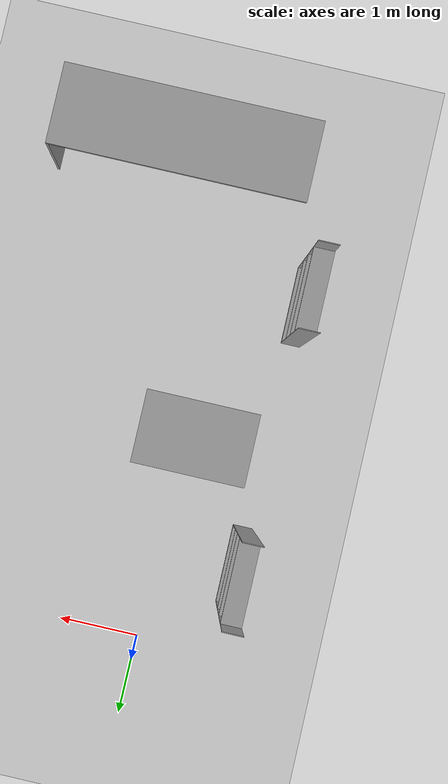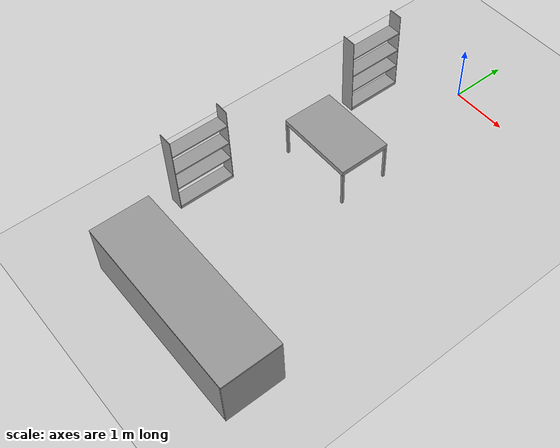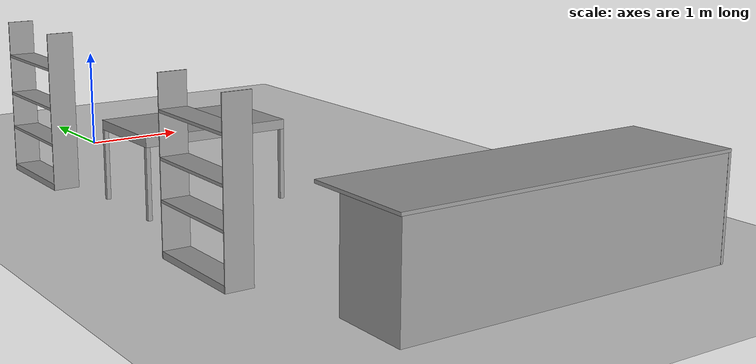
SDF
<sdf version="1.7">
 <world name="default">
  <model name="ground_plane">
   <static>1</static>
   <link name="link">
    <collision name="collision">
     <geometry><plane><normal>0 0 1</normal><size>100 100</size></plane></geometry>
     <surface>
      <contact><collide_bitmask>65535</collide_bitmask></contact>
      <friction><ode><mu>100</mu><mu2>50</mu2></ode></friction>
     </surface>
    </collision>
    <visual name="visual">
     <cast_shadows>0</cast_shadows>
     <geometry><plane><normal>0 0 1</normal><size>100 100</size></plane></geometry>
     <material>
      <script><uri>file://media/materials/scripts/gazebo.material</uri><name>Gazebo/Grey</name></script>
     </material>
    </visual>
   </link>
  </model>
  <model name="kitchen_island">
   <link name="link_0">
    <inertial>
     <mass>1</mass>
     <inertia>
      <ixx>0.166667</ixx>
      <ixy>0</ixy>
      <ixz>0</ixz>
      <iyy>0.166667</iyy>
      <iyz>0</iyz>
      <izz>0.166667</izz>
     </inertia>
    </inertial>
    <pose>0 0 0.917 0 -0 0</pose>
    <visual name="visual">
     <geometry><box><size>3.18 1 0.028</size></box></geometry>
     <material>
      <lighting>1</lighting>
      <script><uri>file://media/materials/scripts/gazebo.material</uri><name>Gazebo/Grey</name></script>
      <shader type="pixel"><normal_map>__default__</normal_map></shader>
      <ambient>0.3 0.3 0.3 1</ambient>
      <diffuse>0.7 0.7 0.7 1</diffuse>
      <specular>0.01 0.01 0.01 1</specular>
      <emissive>0 0 0 1</emissive>
     </material>
    </visual>
    <collision name="collision">
     <geometry><box><size>3.18 1 0.028</size></box></geometry>
     <surface>
      <friction>
       <ode><mu>1</mu><mu2>1</mu2><fdir1>0 0 0</fdir1><slip1>0</slip1><slip2>0</slip2></ode>
       <torsional>
        <coefficient>1</coefficient>
        <patch_radius>0</patch_radius>
        <surface_radius>0</surface_radius>
        <use_patch_radius>1</use_patch_radius>
        <ode><slip>0</slip></ode>
       </torsional>
      </friction>
      <bounce><restitution_coefficient>0</restitution_coefficient><threshold>1e+06</threshold></bounce>
      <contact>
       <collide_without_contact>0</collide_without_contact>
       <collide_without_contact_bitmask>1</collide_without_contact_bitmask>
       <collide_bitmask>1</collide_bitmask>
       <ode>
        <soft_cfm>0</soft_cfm>
        <soft_erp>0.2</soft_erp>
        <kp>1e+13</kp>
        <kd>1</kd>
        <max_vel>0.01</max_vel>
        <min_depth>0</min_depth>
       </ode>
       <bullet>
        <split_impulse>1</split_impulse>
        <split_impulse_penetration_threshold>-0.01</split_impulse_penetration_threshold>
        <soft_cfm>0</soft_cfm>
        <soft_erp>0.2</soft_erp>
        <kp>1e+13</kp>
        <kd>1</kd>
       </bullet>
      </contact>
     </surface>
    </collision>
   </link>
   <link name="link_1">
    <inertial>
     <mass>1</mass>
     <inertia>
      <ixx>0.166667</ixx>
      <ixy>0</ixy>
      <ixz>0</ixz>
      <iyy>0.166667</iyy>
      <iyz>0</iyz>
      <izz>0.166667</izz>
     </inertia>
    </inertial>
    <pose>1.576 0 0.4515 0 -0 0</pose>
    <visual name="visual">
     <geometry><box><size>0.028 1 0.903</size></box></geometry>
     <material>
      <lighting>1</lighting>
      <script><uri>file://media/materials/scripts/gazebo.material</uri><name>Gazebo/Grey</name></script>
      <shader type="pixel"><normal_map>__default__</normal_map></shader>
      <ambient>0.3 0.3 0.3 1</ambient>
      <diffuse>0.7 0.7 0.7 1</diffuse>
      <specular>0.01 0.01 0.01 1</specular>
      <emissive>0 0 0 1</emissive>
     </material>
    </visual>
    <collision name="collision">
     <geometry><box><size>0.028 1 0.903</size></box></geometry>
     <surface>
      <friction>
       <ode><mu>1</mu><mu2>1</mu2><fdir1>0 0 0</fdir1><slip1>0</slip1><slip2>0</slip2></ode>
       <torsional>
        <coefficient>1</coefficient>
        <patch_radius>0</patch_radius>
        <surface_radius>0</surface_radius>
        <use_patch_radius>1</use_patch_radius>
        <ode><slip>0</slip></ode>
       </torsional>
      </friction>
      <bounce><restitution_coefficient>0</restitution_coefficient><threshold>1e+06</threshold></bounce>
      <contact>
       <collide_without_contact>0</collide_without_contact>
       <collide_without_contact_bitmask>1</collide_without_contact_bitmask>
       <collide_bitmask>1</collide_bitmask>
       <ode>
        <soft_cfm>0</soft_cfm>
        <soft_erp>0.2</soft_erp>
        <kp>1e+13</kp>
        <kd>1</kd>
        <max_vel>0.01</max_vel>
        <min_depth>0</min_depth>
       </ode>
       <bullet>
        <split_impulse>1</split_impulse>
        <split_impulse_penetration_threshold>-0.01</split_impulse_penetration_threshold>
        <soft_cfm>0</soft_cfm>
        <soft_erp>0.2</soft_erp>
        <kp>1e+13</kp>
        <kd>1</kd>
       </bullet>
      </contact>
     </surface>
    </collision>
   </link>
   <link name="link_2">
    <inertial>
     <mass>1</mass>
     <inertia>
      <ixx>0.166667</ixx>
      <ixy>0</ixy>
      <ixz>0</ixz>
      <iyy>0.166667</iyy>
      <iyz>0</iyz>
      <izz>0.166667</izz>
     </inertia>
    </inertial>
    <pose>-0.01 -0.15 0.4515 0 -0 0</pose>
    <visual name="visual">
     <geometry><box><size>3.14 0.7 0.903</size></box></geometry>
     <material>
      <lighting>1</lighting>
      <script><uri>file://media/materials/scripts/gazebo.material</uri><name>Gazebo/Grey</name></script>
      <shader type="pixel"><normal_map>__default__</normal_map></shader>
      <ambient>0.3 0.3 0.3 1</ambient>
      <diffuse>0.7 0.7 0.7 1</diffuse>
      <specular>0.01 0.01 0.01 1</specular>
      <emissive>0 0 0 1</emissive>
     </material>
    </visual>
    <collision name="collision">
     <geometry><box><size>3.14 0.7 0.903</size></box></geometry>
     <surface>
      <friction>
       <ode><mu>1</mu><mu2>1</mu2><fdir1>0 0 0</fdir1><slip1>0</slip1><slip2>0</slip2></ode>
       <torsional>
        <coefficient>1</coefficient>
        <patch_radius>0</patch_radius>
        <surface_radius>0</surface_radius>
        <use_patch_radius>1</use_patch_radius>
        <ode><slip>0</slip></ode>
       </torsional>
      </friction>
      <bounce><restitution_coefficient>0</restitution_coefficient><threshold>1e+06</threshold></bounce>
      <contact>
       <collide_without_contact>0</collide_without_contact>
       <collide_without_contact_bitmask>1</collide_without_contact_bitmask>
       <collide_bitmask>1</collide_bitmask>
       <ode>
        <soft_cfm>0</soft_cfm>
        <soft_erp>0.2</soft_erp>
        <kp>1e+13</kp>
        <kd>1</kd>
        <max_vel>0.01</max_vel>
        <min_depth>0</min_depth>
       </ode>
       <bullet>
        <split_impulse>1</split_impulse>
        <split_impulse_penetration_threshold>-0.01</split_impulse_penetration_threshold>
        <soft_cfm>0</soft_cfm>
        <soft_erp>0.2</soft_erp>
        <kp>1e+13</kp>
        <kd>1</kd>
       </bullet>
      </contact>
     </surface>
    </collision>
   </link>
   <static>1</static>
   <pose>0.779319 -6.16263 0 0 -0 0</pose>
  </model>
  <model name="bremen_table">
   <static>1</static>
   <link name="link_3">
    <inertial>
     <mass>1</mass>
     <inertia>
      <ixx>0.166667</ixx>
      <ixy>0</ixy>
      <ixz>0</ixz>
      <iyy>0.166667</iyy>
      <iyz>0</iyz>
      <izz>0.166667</izz>
     </inertia>
    </inertial>
    <pose>0 0 0.3 0 -0 0</pose>
    <visual name="visual">
     <geometry><box><size>1.4 0.9 0.09</size></box></geometry>
     <material>
      <lighting>1</lighting>
      <script><uri>file://media/materials/scripts/gazebo.material</uri><name>Gazebo/Grey</name></script>
      <shader type="pixel"><normal_map>__default__</normal_map></shader>
      <ambient>0.3 0.3 0.3 1</ambient>
      <diffuse>0.7 0.7 0.7 1</diffuse>
      <specular>0.01 0.01 0.01 1</specular>
      <emissive>0 0 0 1</emissive>
     </material>
    </visual>
    <collision name="collision">
     <geometry><box><size>1.4 0.9 0.09</size></box></geometry>
     <surface>
      <friction>
       <ode><mu>1</mu><mu2>1</mu2><fdir1>0 0 0</fdir1><slip1>0</slip1><slip2>0</slip2></ode>
       <torsional>
        <coefficient>1</coefficient>
        <patch_radius>0</patch_radius>
        <surface_radius>0</surface_radius>
        <use_patch_radius>1</use_patch_radius>
        <ode><slip>0</slip></ode>
       </torsional>
      </friction>
      <bounce><restitution_coefficient>0</restitution_coefficient><threshold>1e+06</threshold></bounce>
      <contact>
       <collide_without_contact>0</collide_without_contact>
       <collide_without_contact_bitmask>1</collide_without_contact_bitmask>
       <collide_bitmask>1</collide_bitmask>
       <ode>
        <soft_cfm>0</soft_cfm>
        <soft_erp>0.2</soft_erp>
        <kp>1e+13</kp>
        <kd>1</kd>
        <max_vel>0.01</max_vel>
        <min_depth>0</min_depth>
       </ode>
       <bullet>
        <split_impulse>1</split_impulse>
        <split_impulse_penetration_threshold>-0.01</split_impulse_penetration_threshold>
        <soft_cfm>0</soft_cfm>
        <soft_erp>0.2</soft_erp>
        <kp>1e+13</kp>
        <kd>1</kd>
       </bullet>
      </contact>
     </surface>
    </collision>
   </link>
   <link name="link_4">
    <inertial>
     <mass>1</mass>
     <inertia>
      <ixx>0.166667</ixx>
      <ixy>0</ixy>
      <ixz>0</ixz>
      <iyy>0.166667</iyy>
      <iyz>0</iyz>
      <izz>0.166667</izz>
     </inertia>
    </inertial>
    <pose>-0.68 -0.43 -0.075 0 -0 0</pose>
    <visual name="visual">
     <geometry><box><size>0.04 0.04 0.66</size></box></geometry>
     <material>
      <lighting>1</lighting>
      <script><uri>file://media/materials/scripts/gazebo.material</uri><name>Gazebo/Grey</name></script>
      <shader type="pixel"><normal_map>__default__</normal_map></shader>
      <ambient>0.3 0.3 0.3 1</ambient>
      <diffuse>0.7 0.7 0.7 1</diffuse>
      <specular>0.01 0.01 0.01 1</specular>
      <emissive>0 0 0 1</emissive>
     </material>
    </visual>
    <collision name="collision">
     <geometry><box><size>0.04 0.04 0.66</size></box></geometry>
     <surface>
      <friction>
       <ode><mu>1</mu><mu2>1</mu2><fdir1>0 0 0</fdir1><slip1>0</slip1><slip2>0</slip2></ode>
       <torsional>
        <coefficient>1</coefficient>
        <patch_radius>0</patch_radius>
        <surface_radius>0</surface_radius>
        <use_patch_radius>1</use_patch_radius>
        <ode><slip>0</slip></ode>
       </torsional>
      </friction>
      <bounce><restitution_coefficient>0</restitution_coefficient><threshold>1e+06</threshold></bounce>
      <contact>
       <collide_without_contact>0</collide_without_contact>
       <collide_without_contact_bitmask>1</collide_without_contact_bitmask>
       <collide_bitmask>1</collide_bitmask>
       <ode>
        <soft_cfm>0</soft_cfm>
        <soft_erp>0.2</soft_erp>
        <kp>1e+13</kp>
        <kd>1</kd>
        <max_vel>0.01</max_vel>
        <min_depth>0</min_depth>
       </ode>
       <bullet>
        <split_impulse>1</split_impulse>
        <split_impulse_penetration_threshold>-0.01</split_impulse_penetration_threshold>
        <soft_cfm>0</soft_cfm>
        <soft_erp>0.2</soft_erp>
        <kp>1e+13</kp>
        <kd>1</kd>
       </bullet>
      </contact>
     </surface>
    </collision>
   </link>
   <link name="link_4_clone">
    <inertial>
     <mass>1</mass>
     <inertia>
      <ixx>0.166667</ixx>
      <ixy>0</ixy>
      <ixz>0</ixz>
      <iyy>0.166667</iyy>
      <iyz>0</iyz>
      <izz>0.166667</izz>
     </inertia>
    </inertial>
    <pose>-0.68 0.43 -0.075 0 -0 0</pose>
    <visual name="visual">
     <geometry><box><size>0.04 0.04 0.66</size></box></geometry>
     <material>
      <lighting>1</lighting>
      <script><uri>file://media/materials/scripts/gazebo.material</uri><name>Gazebo/Grey</name></script>
      <shader type="pixel"><normal_map>__default__</normal_map></shader>
      <ambient>0.3 0.3 0.3 1</ambient>
      <diffuse>0.7 0.7 0.7 1</diffuse>
      <specular>0.01 0.01 0.01 1</specular>
      <emissive>0 0 0 1</emissive>
     </material>
    </visual>
    <collision name="collision">
     <geometry><box><size>0.04 0.04 0.66</size></box></geometry>
     <surface>
      <friction>
       <ode><mu>1</mu><mu2>1</mu2><fdir1>0 0 0</fdir1><slip1>0</slip1><slip2>0</slip2></ode>
       <torsional>
        <coefficient>1</coefficient>
        <patch_radius>0</patch_radius>
        <surface_radius>0</surface_radius>
        <use_patch_radius>1</use_patch_radius>
        <ode><slip>0</slip></ode>
       </torsional>
      </friction>
      <bounce><restitution_coefficient>0</restitution_coefficient><threshold>1e+06</threshold></bounce>
      <contact>
       <collide_without_contact>0</collide_without_contact>
       <collide_without_contact_bitmask>1</collide_without_contact_bitmask>
       <collide_bitmask>1</collide_bitmask>
       <ode>
        <soft_cfm>0</soft_cfm>
        <soft_erp>0.2</soft_erp>
        <kp>1e+13</kp>
        <kd>1</kd>
        <max_vel>0.01</max_vel>
        <min_depth>0</min_depth>
       </ode>
       <bullet>
        <split_impulse>1</split_impulse>
        <split_impulse_penetration_threshold>-0.01</split_impulse_penetration_threshold>
        <soft_cfm>0</soft_cfm>
        <soft_erp>0.2</soft_erp>
        <kp>1e+13</kp>
        <kd>1</kd>
       </bullet>
      </contact>
     </surface>
    </collision>
   </link>
   <link name="link_4_clone_clone">
    <inertial>
     <mass>1</mass>
     <inertia>
      <ixx>0.166667</ixx>
      <ixy>0</ixy>
      <ixz>0</ixz>
      <iyy>0.166667</iyy>
      <iyz>0</iyz>
      <izz>0.166667</izz>
     </inertia>
    </inertial>
    <pose>0.68 0.43 -0.075 0 -0 0</pose>
    <visual name="visual">
     <geometry><box><size>0.04 0.04 0.66</size></box></geometry>
     <material>
      <lighting>1</lighting>
      <script><uri>file://media/materials/scripts/gazebo.material</uri><name>Gazebo/Grey</name></script>
      <shader type="pixel"><normal_map>__default__</normal_map></shader>
      <ambient>0.3 0.3 0.3 1</ambient>
      <diffuse>0.7 0.7 0.7 1</diffuse>
      <specular>0.01 0.01 0.01 1</specular>
      <emissive>0 0 0 1</emissive>
     </material>
    </visual>
    <collision name="collision">
     <geometry><box><size>0.04 0.04 0.66</size></box></geometry>
     <surface>
      <friction>
       <ode><mu>1</mu><mu2>1</mu2><fdir1>0 0 0</fdir1><slip1>0</slip1><slip2>0</slip2></ode>
       <torsional>
        <coefficient>1</coefficient>
        <patch_radius>0</patch_radius>
        <surface_radius>0</surface_radius>
        <use_patch_radius>1</use_patch_radius>
        <ode><slip>0</slip></ode>
       </torsional>
      </friction>
      <bounce><restitution_coefficient>0</restitution_coefficient><threshold>1e+06</threshold></bounce>
      <contact>
       <collide_without_contact>0</collide_without_contact>
       <collide_without_contact_bitmask>1</collide_without_contact_bitmask>
       <collide_bitmask>1</collide_bitmask>
       <ode>
        <soft_cfm>0</soft_cfm>
        <soft_erp>0.2</soft_erp>
        <kp>1e+13</kp>
        <kd>1</kd>
        <max_vel>0.01</max_vel>
        <min_depth>0</min_depth>
       </ode>
       <bullet>
        <split_impulse>1</split_impulse>
        <split_impulse_penetration_threshold>-0.01</split_impulse_penetration_threshold>
        <soft_cfm>0</soft_cfm>
        <soft_erp>0.2</soft_erp>
        <kp>1e+13</kp>
        <kd>1</kd>
       </bullet>
      </contact>
     </surface>
    </collision>
   </link>
   <link name="link_4_clone_clone_clone">
    <inertial>
     <mass>1</mass>
     <inertia>
      <ixx>0.166667</ixx>
      <ixy>0</ixy>
      <ixz>0</ixz>
      <iyy>0.166667</iyy>
      <iyz>0</iyz>
      <izz>0.166667</izz>
     </inertia>
    </inertial>
    <pose>0.68 -0.43 -0.075 0 -0 0</pose>
    <visual name="visual">
     <geometry><box><size>0.04 0.04 0.66</size></box></geometry>
     <material>
      <lighting>1</lighting>
      <script><uri>file://media/materials/scripts/gazebo.material</uri><name>Gazebo/Grey</name></script>
      <shader type="pixel"><normal_map>__default__</normal_map></shader>
      <ambient>0.3 0.3 0.3 1</ambient>
      <diffuse>0.7 0.7 0.7 1</diffuse>
      <specular>0.01 0.01 0.01 1</specular>
      <emissive>0 0 0 1</emissive>
     </material>
    </visual>
    <collision name="collision">
     <geometry><box><size>0.04 0.04 0.66</size></box></geometry>
     <surface>
      <friction>
       <ode><mu>1</mu><mu2>1</mu2><fdir1>0 0 0</fdir1><slip1>0</slip1><slip2>0</slip2></ode>
       <torsional>
        <coefficient>1</coefficient>
        <patch_radius>0</patch_radius>
        <surface_radius>0</surface_radius>
        <use_patch_radius>1</use_patch_radius>
        <ode><slip>0</slip></ode>
       </torsional>
      </friction>
      <bounce><restitution_coefficient>0</restitution_coefficient><threshold>1e+06</threshold></bounce>
      <contact>
       <collide_without_contact>0</collide_without_contact>
       <collide_without_contact_bitmask>1</collide_without_contact_bitmask>
       <collide_bitmask>1</collide_bitmask>
       <ode>
        <soft_cfm>0</soft_cfm>
        <soft_erp>0.2</soft_erp>
        <kp>1e+13</kp>
        <kd>1</kd>
        <max_vel>0.01</max_vel>
        <min_depth>0</min_depth>
       </ode>
       <bullet>
        <split_impulse>1</split_impulse>
        <split_impulse_penetration_threshold>-0.01</split_impulse_penetration_threshold>
        <soft_cfm>0</soft_cfm>
        <soft_erp>0.2</soft_erp>
        <kp>1e+13</kp>
        <kd>1</kd>
       </bullet>
      </contact>
     </surface>
    </collision>
   </link>
   <static>0</static>
   <pose>-0.159245 -2.65045 0.405 0 -0 0</pose>
  </model>
  <model name="bremen_shelf0_0_clone">
   <link name="link_0">
    <inertial>
     <mass>1</mass>
     <inertia>
      <ixx>0.166667</ixx>
      <ixy>0</ixy>
      <ixz>0</ixz>
      <iyy>0.166667</iyy>
      <iyz>0</iyz>
      <izz>0.166667</izz>
     </inertia>
    </inertial>
    <pose>0 0 -0.639583 0 -0 0</pose>
    <visual name="visual">
     <geometry><box><size>0.99 0.25 0.06</size></box></geometry>
     <material>
      <lighting>1</lighting>
      <script><uri>file://media/materials/scripts/gazebo.material</uri><name>Gazebo/Grey</name></script>
      <shader type="pixel"><normal_map>__default__</normal_map></shader>
      <ambient>0.3 0.3 0.3 1</ambient>
      <diffuse>0.7 0.7 0.7 1</diffuse>
      <specular>0.01 0.01 0.01 1</specular>
      <emissive>0 0 0 1</emissive>
     </material>
    </visual>
    <collision name="collision">
     <geometry><box><size>0.99 0.25 0.06</size></box></geometry>
     <surface>
      <friction>
       <ode><mu>1</mu><mu2>1</mu2><fdir1>0 0 0</fdir1><slip1>0</slip1><slip2>0</slip2></ode>
       <torsional>
        <coefficient>1</coefficient>
        <patch_radius>0</patch_radius>
        <surface_radius>0</surface_radius>
        <use_patch_radius>1</use_patch_radius>
        <ode><slip>0</slip></ode>
       </torsional>
      </friction>
      <bounce><restitution_coefficient>0</restitution_coefficient><threshold>1e+06</threshold></bounce>
      <contact>
       <collide_without_contact>0</collide_without_contact>
       <collide_without_contact_bitmask>1</collide_without_contact_bitmask>
       <collide_bitmask>1</collide_bitmask>
       <ode>
        <soft_cfm>0</soft_cfm>
        <soft_erp>0.2</soft_erp>
        <kp>1e+13</kp>
        <kd>1</kd>
        <max_vel>0.01</max_vel>
        <min_depth>0</min_depth>
       </ode>
       <bullet>
        <split_impulse>1</split_impulse>
        <split_impulse_penetration_threshold>-0.01</split_impulse_penetration_threshold>
        <soft_cfm>0</soft_cfm>
        <soft_erp>0.2</soft_erp>
        <kp>1e+13</kp>
        <kd>1</kd>
       </bullet>
      </contact>
     </surface>
    </collision>
   </link>
   <link name="link_0_clone">
    <inertial>
     <mass>1</mass>
     <inertia>
      <ixx>0.166667</ixx>
      <ixy>0</ixy>
      <ixz>0</ixz>
      <iyy>0.166667</iyy>
      <iyz>0</iyz>
      <izz>0.166667</izz>
     </inertia>
    </inertial>
    <pose>0 0 -0.197083 0 -0 0</pose>
    <visual name="visual">
     <geometry><box><size>0.99 0.25 0.025</size></box></geometry>
     <material>
      <lighting>1</lighting>
      <script><uri>file://media/materials/scripts/gazebo.material</uri><name>Gazebo/Grey</name></script>
      <shader type="pixel"><normal_map>__default__</normal_map></shader>
      <ambient>0.3 0.3 0.3 1</ambient>
      <diffuse>0.7 0.7 0.7 1</diffuse>
      <specular>0.01 0.01 0.01 1</specular>
      <emissive>0 0 0 1</emissive>
     </material>
    </visual>
    <collision name="collision">
     <geometry><box><size>0.99 0.25 0.025</size></box></geometry>
     <surface>
      <friction>
       <ode><mu>1</mu><mu2>1</mu2><fdir1>0 0 0</fdir1><slip1>0</slip1><slip2>0</slip2></ode>
       <torsional>
        <coefficient>1</coefficient>
        <patch_radius>0</patch_radius>
        <surface_radius>0</surface_radius>
        <use_patch_radius>1</use_patch_radius>
        <ode><slip>0</slip></ode>
       </torsional>
      </friction>
      <bounce><restitution_coefficient>0</restitution_coefficient><threshold>1e+06</threshold></bounce>
      <contact>
       <collide_without_contact>0</collide_without_contact>
       <collide_without_contact_bitmask>1</collide_without_contact_bitmask>
       <collide_bitmask>1</collide_bitmask>
       <ode>
        <soft_cfm>0</soft_cfm>
        <soft_erp>0.2</soft_erp>
        <kp>1e+13</kp>
        <kd>1</kd>
        <max_vel>0.01</max_vel>
        <min_depth>0</min_depth>
       </ode>
       <bullet>
        <split_impulse>1</split_impulse>
        <split_impulse_penetration_threshold>-0.01</split_impulse_penetration_threshold>
        <soft_cfm>0</soft_cfm>
        <soft_erp>0.2</soft_erp>
        <kp>1e+13</kp>
        <kd>1</kd>
       </bullet>
      </contact>
     </surface>
    </collision>
   </link>
   <link name="link_0_clone_clone">
    <inertial>
     <mass>1</mass>
     <inertia>
      <ixx>0.166667</ixx>
      <ixy>0</ixy>
      <ixz>0</ixz>
      <iyy>0.166667</iyy>
      <iyz>0</iyz>
      <izz>0.166667</izz>
     </inertia>
    </inertial>
    <pose>0 0 0.147917 0 -0 0</pose>
    <visual name="visual">
     <geometry><box><size>0.99 0.25 0.025</size></box></geometry>
     <material>
      <lighting>1</lighting>
      <script><uri>file://media/materials/scripts/gazebo.material</uri><name>Gazebo/Grey</name></script>
      <shader type="pixel"><normal_map>__default__</normal_map></shader>
      <ambient>0.3 0.3 0.3 1</ambient>
      <diffuse>0.7 0.7 0.7 1</diffuse>
      <specular>0.01 0.01 0.01 1</specular>
      <emissive>0 0 0 1</emissive>
     </material>
    </visual>
    <collision name="collision">
     <geometry><box><size>0.99 0.25 0.025</size></box></geometry>
     <surface>
      <friction>
       <ode><mu>1</mu><mu2>1</mu2><fdir1>0 0 0</fdir1><slip1>0</slip1><slip2>0</slip2></ode>
       <torsional>
        <coefficient>1</coefficient>
        <patch_radius>0</patch_radius>
        <surface_radius>0</surface_radius>
        <use_patch_radius>1</use_patch_radius>
        <ode><slip>0</slip></ode>
       </torsional>
      </friction>
      <bounce><restitution_coefficient>0</restitution_coefficient><threshold>1e+06</threshold></bounce>
      <contact>
       <collide_without_contact>0</collide_without_contact>
       <collide_without_contact_bitmask>1</collide_without_contact_bitmask>
       <collide_bitmask>1</collide_bitmask>
       <ode>
        <soft_cfm>0</soft_cfm>
        <soft_erp>0.2</soft_erp>
        <kp>1e+13</kp>
        <kd>1</kd>
        <max_vel>0.01</max_vel>
        <min_depth>0</min_depth>
       </ode>
       <bullet>
        <split_impulse>1</split_impulse>
        <split_impulse_penetration_threshold>-0.01</split_impulse_penetration_threshold>
        <soft_cfm>0</soft_cfm>
        <soft_erp>0.2</soft_erp>
        <kp>1e+13</kp>
        <kd>1</kd>
       </bullet>
      </contact>
     </surface>
    </collision>
   </link>
   <link name="link_0_clone_clone_clone">
    <inertial>
     <mass>1</mass>
     <inertia>
      <ixx>0.166667</ixx>
      <ixy>0</ixy>
      <ixz>0</ixz>
      <iyy>0.166667</iyy>
      <iyz>0</iyz>
      <izz>0.166667</izz>
     </inertia>
    </inertial>
    <pose>0 0 0.527917 0 -0 0</pose>
    <visual name="visual">
     <geometry><box><size>0.99 0.25 0.025</size></box></geometry>
     <material>
      <lighting>1</lighting>
      <script><uri>file://media/materials/scripts/gazebo.material</uri><name>Gazebo/Grey</name></script>
      <shader type="pixel"><normal_map>__default__</normal_map></shader>
      <ambient>0.3 0.3 0.3 1</ambient>
      <diffuse>0.7 0.7 0.7 1</diffuse>
      <specular>0.01 0.01 0.01 1</specular>
      <emissive>0 0 0 1</emissive>
     </material>
    </visual>
    <collision name="collision">
     <geometry><box><size>0.99 0.25 0.025</size></box></geometry>
     <surface>
      <friction>
       <ode><mu>1</mu><mu2>1</mu2><fdir1>0 0 0</fdir1><slip1>0</slip1><slip2>0</slip2></ode>
       <torsional>
        <coefficient>1</coefficient>
        <patch_radius>0</patch_radius>
        <surface_radius>0</surface_radius>
        <use_patch_radius>1</use_patch_radius>
        <ode><slip>0</slip></ode>
       </torsional>
      </friction>
      <bounce><restitution_coefficient>0</restitution_coefficient><threshold>1e+06</threshold></bounce>
      <contact>
       <collide_without_contact>0</collide_without_contact>
       <collide_without_contact_bitmask>1</collide_without_contact_bitmask>
       <collide_bitmask>1</collide_bitmask>
       <ode>
        <soft_cfm>0</soft_cfm>
        <soft_erp>0.2</soft_erp>
        <kp>1e+13</kp>
        <kd>1</kd>
        <max_vel>0.01</max_vel>
        <min_depth>0</min_depth>
       </ode>
       <bullet>
        <split_impulse>1</split_impulse>
        <split_impulse_penetration_threshold>-0.01</split_impulse_penetration_threshold>
        <soft_cfm>0</soft_cfm>
        <soft_erp>0.2</soft_erp>
        <kp>1e+13</kp>
        <kd>1</kd>
       </bullet>
      </contact>
     </surface>
    </collision>
   </link>
   <link name="link_2">
    <inertial>
     <mass>1</mass>
     <inertia>
      <ixx>0.166667</ixx>
      <ixy>0</ixy>
      <ixz>0</ixz>
      <iyy>0.166667</iyy>
      <iyz>0</iyz>
      <izz>0.166667</izz>
     </inertia>
    </inertial>
    <pose>0.5 0 0.080417 0 -0 0</pose>
    <visual name="visual">
     <geometry><box><size>0.01 0.25 1.5</size></box></geometry>
     <material>
      <lighting>1</lighting>
      <script><uri>file://media/materials/scripts/gazebo.material</uri><name>Gazebo/Grey</name></script>
      <shader type="pixel"><normal_map>__default__</normal_map></shader>
      <ambient>0.3 0.3 0.3 1</ambient>
      <diffuse>0.7 0.7 0.7 1</diffuse>
      <specular>0.01 0.01 0.01 1</specular>
      <emissive>0 0 0 1</emissive>
     </material>
    </visual>
    <collision name="collision">
     <geometry><box><size>0.01 0.25 1.5</size></box></geometry>
     <surface>
      <friction>
       <ode><mu>1</mu><mu2>1</mu2><fdir1>0 0 0</fdir1><slip1>0</slip1><slip2>0</slip2></ode>
       <torsional>
        <coefficient>1</coefficient>
        <patch_radius>0</patch_radius>
        <surface_radius>0</surface_radius>
        <use_patch_radius>1</use_patch_radius>
        <ode><slip>0</slip></ode>
       </torsional>
      </friction>
      <bounce><restitution_coefficient>0</restitution_coefficient><threshold>1e+06</threshold></bounce>
      <contact>
       <collide_without_contact>0</collide_without_contact>
       <collide_without_contact_bitmask>1</collide_without_contact_bitmask>
       <collide_bitmask>1</collide_bitmask>
       <ode>
        <soft_cfm>0</soft_cfm>
        <soft_erp>0.2</soft_erp>
        <kp>1e+13</kp>
        <kd>1</kd>
        <max_vel>0.01</max_vel>
        <min_depth>0</min_depth>
       </ode>
       <bullet>
        <split_impulse>1</split_impulse>
        <split_impulse_penetration_threshold>-0.01</split_impulse_penetration_threshold>
        <soft_cfm>0</soft_cfm>
        <soft_erp>0.2</soft_erp>
        <kp>1e+13</kp>
        <kd>1</kd>
       </bullet>
      </contact>
     </surface>
    </collision>
   </link>
   <link name="link_2_clone">
    <inertial>
     <mass>1</mass>
     <inertia>
      <ixx>0.166667</ixx>
      <ixy>0</ixy>
      <ixz>0</ixz>
      <iyy>0.166667</iyy>
      <iyz>0</iyz>
      <izz>0.166667</izz>
     </inertia>
    </inertial>
    <pose>-0.5 -0 0.080417 0 -0 0</pose>
    <visual name="visual">
     <geometry><box><size>0.01 0.25 1.5</size></box></geometry>
     <material>
      <lighting>1</lighting>
      <script><uri>file://media/materials/scripts/gazebo.material</uri><name>Gazebo/Grey</name></script>
      <shader type="pixel"><normal_map>__default__</normal_map></shader>
      <ambient>0.3 0.3 0.3 1</ambient>
      <diffuse>0.7 0.7 0.7 1</diffuse>
      <specular>0.01 0.01 0.01 1</specular>
      <emissive>0 0 0 1</emissive>
     </material>
    </visual>
    <collision name="collision">
     <geometry><box><size>0.01 0.25 1.5</size></box></geometry>
     <surface>
      <friction>
       <ode><mu>1</mu><mu2>1</mu2><fdir1>0 0 0</fdir1><slip1>0</slip1><slip2>0</slip2></ode>
       <torsional>
        <coefficient>1</coefficient>
        <patch_radius>0</patch_radius>
        <surface_radius>0</surface_radius>
        <use_patch_radius>1</use_patch_radius>
        <ode><slip>0</slip></ode>
       </torsional>
      </friction>
      <bounce><restitution_coefficient>0</restitution_coefficient><threshold>1e+06</threshold></bounce>
      <contact>
       <collide_without_contact>0</collide_without_contact>
       <collide_without_contact_bitmask>1</collide_without_contact_bitmask>
       <collide_bitmask>1</collide_bitmask>
       <ode>
        <soft_cfm>0</soft_cfm>
        <soft_erp>0.2</soft_erp>
        <kp>1e+13</kp>
        <kd>1</kd>
        <max_vel>0.01</max_vel>
        <min_depth>0</min_depth>
       </ode>
       <bullet>
        <split_impulse>1</split_impulse>
        <split_impulse_penetration_threshold>-0.01</split_impulse_penetration_threshold>
        <soft_cfm>0</soft_cfm>
        <soft_erp>0.2</soft_erp>
        <kp>1e+13</kp>
        <kd>1</kd>
       </bullet>
      </contact>
     </surface>
    </collision>
   </link>
   <static>1</static>
   <pose>-1.09959 -4.60089 0.669583 0 -0 1.57079</pose>
  </model>
  <model name="bremen_shelf1">
   <link name="link_0">
    <inertial>
     <mass>1</mass>
     <inertia>
      <ixx>0.166667</ixx>
      <ixy>0</ixy>
      <ixz>0</ixz>
      <iyy>0.166667</iyy>
      <iyz>0</iyz>
      <izz>0.166667</izz>
     </inertia>
    </inertial>
    <pose>0 0 -0.639583 0 -0 0</pose>
    <visual name="visual">
     <geometry><box><size>0.99 0.25 0.06</size></box></geometry>
     <material>
      <lighting>1</lighting>
      <script><uri>file://media/materials/scripts/gazebo.material</uri><name>Gazebo/Grey</name></script>
      <shader type="pixel"><normal_map>__default__</normal_map></shader>
      <ambient>0.3 0.3 0.3 1</ambient>
      <diffuse>0.7 0.7 0.7 1</diffuse>
      <specular>0.01 0.01 0.01 1</specular>
      <emissive>0 0 0 1</emissive>
     </material>
    </visual>
    <collision name="collision">
     <geometry><box><size>0.99 0.25 0.06</size></box></geometry>
     <surface>
      <friction>
       <ode><mu>1</mu><mu2>1</mu2><fdir1>0 0 0</fdir1><slip1>0</slip1><slip2>0</slip2></ode>
       <torsional>
        <coefficient>1</coefficient>
        <patch_radius>0</patch_radius>
        <surface_radius>0</surface_radius>
        <use_patch_radius>1</use_patch_radius>
        <ode><slip>0</slip></ode>
       </torsional>
      </friction>
      <bounce><restitution_coefficient>0</restitution_coefficient><threshold>1e+06</threshold></bounce>
      <contact>
       <collide_without_contact>0</collide_without_contact>
       <collide_without_contact_bitmask>1</collide_without_contact_bitmask>
       <collide_bitmask>1</collide_bitmask>
       <ode>
        <soft_cfm>0</soft_cfm>
        <soft_erp>0.2</soft_erp>
        <kp>1e+13</kp>
        <kd>1</kd>
        <max_vel>0.01</max_vel>
        <min_depth>0</min_depth>
       </ode>
       <bullet>
        <split_impulse>1</split_impulse>
        <split_impulse_penetration_threshold>-0.01</split_impulse_penetration_threshold>
        <soft_cfm>0</soft_cfm>
        <soft_erp>0.2</soft_erp>
        <kp>1e+13</kp>
        <kd>1</kd>
       </bullet>
      </contact>
     </surface>
    </collision>
   </link>
   <link name="link_0_clone">
    <inertial>
     <mass>1</mass>
     <inertia>
      <ixx>0.166667</ixx>
      <ixy>0</ixy>
      <ixz>0</ixz>
      <iyy>0.166667</iyy>
      <iyz>0</iyz>
      <izz>0.166667</izz>
     </inertia>
    </inertial>
    <pose>0 0 -0.227083 0 -0 0</pose>
    <visual name="visual">
     <geometry><box><size>0.99 0.25 0.025</size></box></geometry>
     <material>
      <lighting>1</lighting>
      <script><uri>file://media/materials/scripts/gazebo.material</uri><name>Gazebo/Grey</name></script>
      <shader type="pixel"><normal_map>__default__</normal_map></shader>
      <ambient>0.3 0.3 0.3 1</ambient>
      <diffuse>0.7 0.7 0.7 1</diffuse>
      <specular>0.01 0.01 0.01 1</specular>
      <emissive>0 0 0 1</emissive>
     </material>
    </visual>
    <collision name="collision">
     <geometry><box><size>0.99 0.25 0.025</size></box></geometry>
     <surface>
      <friction>
       <ode><mu>1</mu><mu2>1</mu2><fdir1>0 0 0</fdir1><slip1>0</slip1><slip2>0</slip2></ode>
       <torsional>
        <coefficient>1</coefficient>
        <patch_radius>0</patch_radius>
        <surface_radius>0</surface_radius>
        <use_patch_radius>1</use_patch_radius>
        <ode><slip>0</slip></ode>
       </torsional>
      </friction>
      <bounce><restitution_coefficient>0</restitution_coefficient><threshold>1e+06</threshold></bounce>
      <contact>
       <collide_without_contact>0</collide_without_contact>
       <collide_without_contact_bitmask>1</collide_without_contact_bitmask>
       <collide_bitmask>1</collide_bitmask>
       <ode>
        <soft_cfm>0</soft_cfm>
        <soft_erp>0.2</soft_erp>
        <kp>1e+13</kp>
        <kd>1</kd>
        <max_vel>0.01</max_vel>
        <min_depth>0</min_depth>
       </ode>
       <bullet>
        <split_impulse>1</split_impulse>
        <split_impulse_penetration_threshold>-0.01</split_impulse_penetration_threshold>
        <soft_cfm>0</soft_cfm>
        <soft_erp>0.2</soft_erp>
        <kp>1e+13</kp>
        <kd>1</kd>
       </bullet>
      </contact>
     </surface>
    </collision>
   </link>
   <link name="link_0_clone_clone">
    <inertial>
     <mass>1</mass>
     <inertia>
      <ixx>0.166667</ixx>
      <ixy>0</ixy>
      <ixz>0</ixz>
      <iyy>0.166667</iyy>
      <iyz>0</iyz>
      <izz>0.166667</izz>
     </inertia>
    </inertial>
    <pose>0 0 0.117917 0 -0 0</pose>
    <visual name="visual">
     <geometry><box><size>0.99 0.25 0.025</size></box></geometry>
     <material>
      <lighting>1</lighting>
      <script><uri>file://media/materials/scripts/gazebo.material</uri><name>Gazebo/Grey</name></script>
      <shader type="pixel"><normal_map>__default__</normal_map></shader>
      <ambient>0.3 0.3 0.3 1</ambient>
      <diffuse>0.7 0.7 0.7 1</diffuse>
      <specular>0.01 0.01 0.01 1</specular>
      <emissive>0 0 0 1</emissive>
     </material>
    </visual>
    <collision name="collision">
     <geometry><box><size>0.99 0.25 0.025</size></box></geometry>
     <surface>
      <friction>
       <ode><mu>1</mu><mu2>1</mu2><fdir1>0 0 0</fdir1><slip1>0</slip1><slip2>0</slip2></ode>
       <torsional>
        <coefficient>1</coefficient>
        <patch_radius>0</patch_radius>
        <surface_radius>0</surface_radius>
        <use_patch_radius>1</use_patch_radius>
        <ode><slip>0</slip></ode>
       </torsional>
      </friction>
      <bounce><restitution_coefficient>0</restitution_coefficient><threshold>1e+06</threshold></bounce>
      <contact>
       <collide_without_contact>0</collide_without_contact>
       <collide_without_contact_bitmask>1</collide_without_contact_bitmask>
       <collide_bitmask>1</collide_bitmask>
       <ode>
        <soft_cfm>0</soft_cfm>
        <soft_erp>0.2</soft_erp>
        <kp>1e+13</kp>
        <kd>1</kd>
        <max_vel>0.01</max_vel>
        <min_depth>0</min_depth>
       </ode>
       <bullet>
        <split_impulse>1</split_impulse>
        <split_impulse_penetration_threshold>-0.01</split_impulse_penetration_threshold>
        <soft_cfm>0</soft_cfm>
        <soft_erp>0.2</soft_erp>
        <kp>1e+13</kp>
        <kd>1</kd>
       </bullet>
      </contact>
     </surface>
    </collision>
   </link>
   <link name="link_0_clone_clone_clone">
    <inertial>
     <mass>1</mass>
     <inertia>
      <ixx>0.166667</ixx>
      <ixy>0</ixy>
      <ixz>0</ixz>
      <iyy>0.166667</iyy>
      <iyz>0</iyz>
      <izz>0.166667</izz>
     </inertia>
    </inertial>
    <pose>0 0 0.492917 0 -0 0</pose>
    <visual name="visual">
     <geometry><box><size>0.99 0.25 0.025</size></box></geometry>
     <material>
      <lighting>1</lighting>
      <script><uri>file://media/materials/scripts/gazebo.material</uri><name>Gazebo/Grey</name></script>
      <shader type="pixel"><normal_map>__default__</normal_map></shader>
      <ambient>0.3 0.3 0.3 1</ambient>
      <diffuse>0.7 0.7 0.7 1</diffuse>
      <specular>0.01 0.01 0.01 1</specular>
      <emissive>0 0 0 1</emissive>
     </material>
    </visual>
    <collision name="collision">
     <geometry><box><size>0.99 0.25 0.025</size></box></geometry>
     <surface>
      <friction>
       <ode><mu>1</mu><mu2>1</mu2><fdir1>0 0 0</fdir1><slip1>0</slip1><slip2>0</slip2></ode>
       <torsional>
        <coefficient>1</coefficient>
        <patch_radius>0</patch_radius>
        <surface_radius>0</surface_radius>
        <use_patch_radius>1</use_patch_radius>
        <ode><slip>0</slip></ode>
       </torsional>
      </friction>
      <bounce><restitution_coefficient>0</restitution_coefficient><threshold>1e+06</threshold></bounce>
      <contact>
       <collide_without_contact>0</collide_without_contact>
       <collide_without_contact_bitmask>1</collide_without_contact_bitmask>
       <collide_bitmask>1</collide_bitmask>
       <ode>
        <soft_cfm>0</soft_cfm>
        <soft_erp>0.2</soft_erp>
        <kp>1e+13</kp>
        <kd>1</kd>
        <max_vel>0.01</max_vel>
        <min_depth>0</min_depth>
       </ode>
       <bullet>
        <split_impulse>1</split_impulse>
        <split_impulse_penetration_threshold>-0.01</split_impulse_penetration_threshold>
        <soft_cfm>0</soft_cfm>
        <soft_erp>0.2</soft_erp>
        <kp>1e+13</kp>
        <kd>1</kd>
       </bullet>
      </contact>
     </surface>
    </collision>
   </link>
   <link name="link_2">
    <inertial>
     <mass>1</mass>
     <inertia>
      <ixx>0.166667</ixx>
      <ixy>0</ixy>
      <ixz>0</ixz>
      <iyy>0.166667</iyy>
      <iyz>0</iyz>
      <izz>0.166667</izz>
     </inertia>
    </inertial>
    <pose>0.5 0 0.080417 0 -0 0</pose>
    <visual name="visual">
     <geometry><box><size>0.01 0.25 1.5</size></box></geometry>
     <material>
      <lighting>1</lighting>
      <script><uri>file://media/materials/scripts/gazebo.material</uri><name>Gazebo/Grey</name></script>
      <shader type="pixel"><normal_map>__default__</normal_map></shader>
      <ambient>0.3 0.3 0.3 1</ambient>
      <diffuse>0.7 0.7 0.7 1</diffuse>
      <specular>0.01 0.01 0.01 1</specular>
      <emissive>0 0 0 1</emissive>
     </material>
    </visual>
    <collision name="collision">
     <geometry><box><size>0.01 0.25 1.5</size></box></geometry>
     <surface>
      <friction>
       <ode><mu>1</mu><mu2>1</mu2><fdir1>0 0 0</fdir1><slip1>0</slip1><slip2>0</slip2></ode>
       <torsional>
        <coefficient>1</coefficient>
        <patch_radius>0</patch_radius>
        <surface_radius>0</surface_radius>
        <use_patch_radius>1</use_patch_radius>
        <ode><slip>0</slip></ode>
       </torsional>
      </friction>
      <bounce><restitution_coefficient>0</restitution_coefficient><threshold>1e+06</threshold></bounce>
      <contact>
       <collide_without_contact>0</collide_without_contact>
       <collide_without_contact_bitmask>1</collide_without_contact_bitmask>
       <collide_bitmask>1</collide_bitmask>
       <ode>
        <soft_cfm>0</soft_cfm>
        <soft_erp>0.2</soft_erp>
        <kp>1e+13</kp>
        <kd>1</kd>
        <max_vel>0.01</max_vel>
        <min_depth>0</min_depth>
       </ode>
       <bullet>
        <split_impulse>1</split_impulse>
        <split_impulse_penetration_threshold>-0.01</split_impulse_penetration_threshold>
        <soft_cfm>0</soft_cfm>
        <soft_erp>0.2</soft_erp>
        <kp>1e+13</kp>
        <kd>1</kd>
       </bullet>
      </contact>
     </surface>
    </collision>
   </link>
   <link name="link_2_clone">
    <inertial>
     <mass>1</mass>
     <inertia>
      <ixx>0.166667</ixx>
      <ixy>0</ixy>
      <ixz>0</ixz>
      <iyy>0.166667</iyy>
      <iyz>0</iyz>
      <izz>0.166667</izz>
     </inertia>
    </inertial>
    <pose>-0.5 -0 0.080417 0 -0 0</pose>
    <visual name="visual">
     <geometry><box><size>0.01 0.25 1.5</size></box></geometry>
     <material>
      <lighting>1</lighting>
      <script><uri>file://media/materials/scripts/gazebo.material</uri><name>Gazebo/Grey</name></script>
      <shader type="pixel"><normal_map>__default__</normal_map></shader>
      <ambient>0.3 0.3 0.3 1</ambient>
      <diffuse>0.7 0.7 0.7 1</diffuse>
      <specular>0.01 0.01 0.01 1</specular>
      <emissive>0 0 0 1</emissive>
     </material>
    </visual>
    <collision name="collision">
     <geometry><box><size>0.01 0.25 1.5</size></box></geometry>
     <surface>
      <friction>
       <ode><mu>1</mu><mu2>1</mu2><fdir1>0 0 0</fdir1><slip1>0</slip1><slip2>0</slip2></ode>
       <torsional>
        <coefficient>1</coefficient>
        <patch_radius>0</patch_radius>
        <surface_radius>0</surface_radius>
        <use_patch_radius>1</use_patch_radius>
        <ode><slip>0</slip></ode>
       </torsional>
      </friction>
      <bounce><restitution_coefficient>0</restitution_coefficient><threshold>1e+06</threshold></bounce>
      <contact>
       <collide_without_contact>0</collide_without_contact>
       <collide_without_contact_bitmask>1</collide_without_contact_bitmask>
       <collide_bitmask>1</collide_bitmask>
       <ode>
        <soft_cfm>0</soft_cfm>
        <soft_erp>0.2</soft_erp>
        <kp>1e+13</kp>
        <kd>1</kd>
        <max_vel>0.01</max_vel>
        <min_depth>0</min_depth>
       </ode>
       <bullet>
        <split_impulse>1</split_impulse>
        <split_impulse_penetration_threshold>-0.01</split_impulse_penetration_threshold>
        <soft_cfm>0</soft_cfm>
        <soft_erp>0.2</soft_erp>
        <kp>1e+13</kp>
        <kd>1</kd>
       </bullet>
      </contact>
     </surface>
    </collision>
   </link>
   <static>1</static>
   <pose>-1.02028 -1.16587 0.669583 0 -0 1.57079</pose>
  </model>
 </world>
</sdf>
